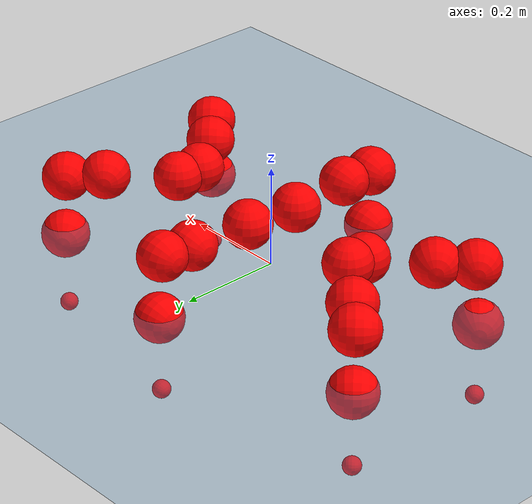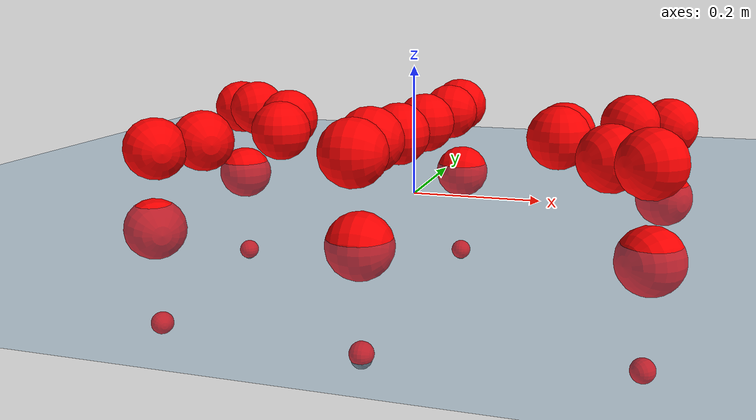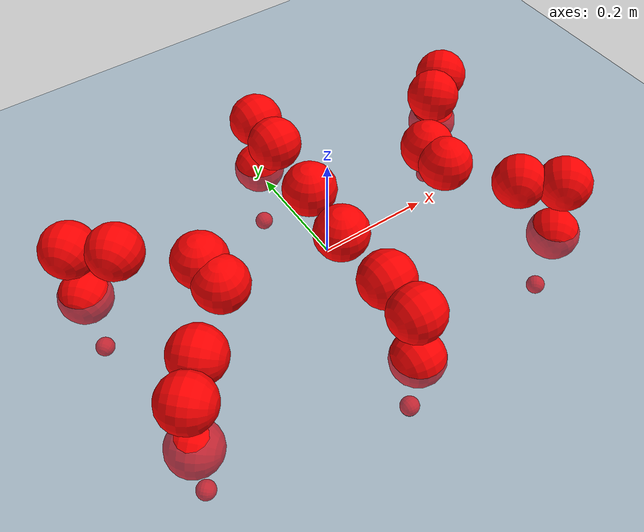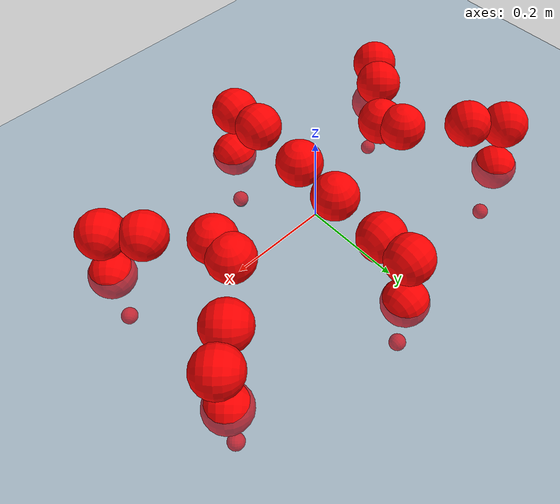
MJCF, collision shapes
<mujoco model="Golem">
  <compiler angle="radian" assetdir="assets" balanceinertia="true" inertiafromgeom="false"/>

  <option timestep="0.005" density="1.2" viscosity="2e-05"/>

  <size nkey="1"/>

  <visual>
    <quality shadowsize="8192"/>
    <map shadowclip="0.5"/>
  </visual>

  <default>
    <default class="/">
      <joint armature="0.01" damping="0.01" frictionloss="0.01"/>
      <geom contype="0" conaffinity="0" group="1" solref="-1000 -80"/>
      <site size="0.01 0.005 0.005" group="5"/>
      <general forcelimited="true" biastype="affine" gainprm="25" biasprm="0 -25 -0.5"/>
      <default class="visual">
        <geom type="mesh" group="2"/>
      </default>
      <default class="collision">
        <geom group="3"/>
      </default>
      <default class="foot">
        <geom size="0.01 0 0" condim="6" group="4" priority="1" solimp="0.015 1 0.01"/>
      </default>
      <default class="reward_collision_sphere">
        <geom group="5" rgba="1 0 0 1"/>
      </default>
    </default>
  </default>

  <asset>
    <texture type="skybox" colorspace="auto" name="//unnamed_texture_0" builtin="gradient" rgb1="0.95 0.95 0.95" rgb2="0.95 0.95 0.95" width="100" height="600"/>
    <texture type="2d" colorspace="auto" name="texplane" builtin="checker" rgb1="0.345 0.575 0.748" rgb2="0.345 0.575 0.748" markrgb="1 1 1" width="512" height="512"/>
    <material name="MatPlane" class="/" texture="texplane" texuniform="true" texrepeat="2 2" specular="0.9"/>
    <mesh name="body" class="/" file="body.stl" scale="0.001 0.001 0.001"/>
    <mesh name="coxa" class="/" file="coxa.stl" scale="0.001 0.001 0.001"/>
    <mesh name="femur" class="/" file="femur.stl" scale="0.001 0.001 0.001"/>
    <mesh name="tibia" class="/" file="tibia.stl" scale="0.001 0.001 0.001"/>
    <mesh name="tarsus" class="/" file="tarsus.stl" scale="0.001 0.001 0.001"/>
  </asset>

  <worldbody>
    <geom name="floor" class="/" size="100 100 0.125" type="plane" group="0" material="MatPlane"/>
    <light name="toplight_shadow" class="/" pos="0 0 5" dir="0.0990148 0.0990148 -0.990148" type="directional" ambient="0.04 0.04 0.04" diffuse="0.55 0.55 0.55" specular="0.12 0.12 0.12"/>
    <light name="toplight_fill" class="/" pos="0 0 5" dir="0.0990148 0.0990148 -0.990148" type="directional" castshadow="false" ambient="0.04 0.04 0.04" diffuse="0.3 0.3 0.3" specular="0.08 0.08 0.08"/>
    <body name="trunk" pos="0.000576292 0.000579462 0.00882951" quat="0.999999 0.000784248 0.00136707 4.28512e-05">
      <inertial pos="0.00120291 -0.00677074 0.00693699" quat="0.999922 -0.00836557 -0.00674584 0.0063447" mass="5.55272" diaginertia="0.0542571 0.00148484 0.0508118"/>
      <joint name="//unnamed_joint_0" type="free"/>
      <geom name="//unnamed_geom_1" class="/" pos="0 0 0.0906178" quat="1 0 0 0" type="mesh" rgba="0.9 0.9 0.9 1" mesh="body"/>
      <site name="imu" class="/" pos="0.200367 -0.00255077 0.104185" size="0.0117893"/>
      <camera name="track" class="/" pos="0 -1.38077 0" quat="0.707107 0.707107 0 0" mode="trackcom"/>
      <camera name="ego_camera" class="/" pos="0.185963 0 0.14159" quat="-0.5 -0.5 0.5 0.5"/>
      <body name="coxa_RR" pos="-0.246069 -0.0593291 0.0857107" quat="0.387335 -0.000857023 0.00130275 -0.921938">
        <inertial pos="0.00999657 0.00471893 0.00157976" quat="0.999269 -0.0139528 0.0128645 -0.0331755" mass="0.310006" diaginertia="0.0598689 0.0015601 0.0625766"/>
        <joint name="coxa_joint_RR" class="/" pos="0 0 0" axis="0.00466436 0.00190741 -0.999987" stiffness="0.00834159" range="-3.07624 3.1502" armature="0.0123901" damping="0" frictionloss="0.00725619"/>
        <geom name="//unnamed_geom_2" class="/" type="mesh" rgba="0.2 0.2 0.2 1" mesh="coxa"/>
        <geom name="//unnamed_geom_3" class="reward_collision_sphere" size="0.047157" pos="-0.0429146 0 0"/>
        <body name="femur_RR" pos="0.0829385 -0.00162485 -0.0059845" quat="0.49967 -0.500192 0.499999 0.500138">
          <inertial pos="-0.00207397 0.00227166 -0.00870379" quat="0.999997 -0.000528704 0.0022202 -0.000217502" mass="0.336439" diaginertia="0.0620606 0.00161577 0.0651239"/>
          <joint name="femur_joint_RR" class="/" pos="0 0 0" axis="0.0101969 0.0371763 -0.999257" stiffness="0.00183809" range="-3.15798 3.11241" armature="0.013621" damping="0.0305584" frictionloss="0.0124982"/>
          <geom name="//unnamed_geom_4" class="/" type="mesh" rgba="0.9 0.9 0.9 1" mesh="femur"/>
          <geom name="//unnamed_geom_5" class="reward_collision_sphere" size="0.047157"/>
          <body name="tibia_RR" pos="0.00499699 -0.0739667 0.0048314" quat="-1.34367e-05 1 0.000173617 2.47024e-05">
            <inertial pos="0.00288484 -0.00782721 0.00878564" quat="0.999229 -0.0209113 -0.0289313 -0.0163433" mass="0.334658" diaginertia="0.068248 0.00167442 0.0596762"/>
            <joint name="tibia_joint_RR" class="/" pos="0 0 0" axis="0.00519903 -0.00231084 0.999984" stiffness="0.00751777" range="-3.14508 3.25631" armature="0.0107753" damping="0" frictionloss="0.0124885"/>
            <geom name="//unnamed_geom_6" class="/" type="mesh" rgba="0.2 0.2 0.2 1" mesh="tibia"/>
            <geom name="//unnamed_geom_7" class="reward_collision_sphere" size="0.047157"/>
            <body name="tarsus_RR" pos="0.12375 0.00825893 0.00147004" quat="0.999991 0.0026176 0.00191659 0.0025867">
              <inertial pos="0.0842329 0.00972575 -0.00215211" quat="0.499442 0.500736 0.499475 0.500345" mass="0.343846" diaginertia="0.0592216 0.00135403 0.0550756"/>
              <joint name="tarsus_joint_RR" class="/" pos="0 0 0" axis="0.00591545 0.0106604 0.999926" stiffness="0.00905291" range="-3.14188 3.10533" armature="0.0127446" damping="0.0337269" frictionloss="0.0113292"/>
              <geom name="//unnamed_geom_8" class="/" type="mesh" rgba="0.9 0.9 0.9 1" mesh="tarsus"/>
              <geom name="foot_1" class="foot" size="0.0114944" pos="0.160215 0 0" quat="0 -0.707107 0 0.707107"/>
              <geom name="//unnamed_geom_10" class="reward_collision_sphere" size="0.047157"/>
              <geom name="//unnamed_geom_11" class="reward_collision_sphere" size="0.0176839" pos="0.153777 0 0"/>
              <site name="foot_1" class="foot" pos="0.160215 0 0" quat="0 -0.707107 0 0.707107" size="0.0117893"/>
            </body>
          </body>
        </body>
      </body>
      <body name="coxa_RM" pos="-0.00977109 -0.0967297 0.0947289" quat="0.705752 -7.18635e-05 -0.000939312 -0.708459">
        <inertial pos="0.000999406 0.00462008 0.0107034" quat="0.999988 -0.00237717 0.000933916 -0.00411048" mass="0.346645" diaginertia="0.0695978 0.00185635 0.0596377"/>
        <joint name="coxa_joint_RM" class="/" pos="0 0 0" axis="0.00176731 -0.000592509 -0.999998" range="-3.14457 3.12181" armature="0.0137688" damping="0.00350499" frictionloss="0.00895774"/>
        <geom name="//unnamed_geom_12" class="/" type="mesh" rgba="0.2 0.2 0.2 1" mesh="coxa"/>
        <geom name="//unnamed_geom_13" class="reward_collision_sphere" size="0.047157" pos="-0.0429146 0 0"/>
        <body name="femur_RM" pos="0.0791199 -0.00148314 0.011062" quat="0.497622 -0.502334 0.497234 0.502783">
          <inertial pos="-2.01933e-06 0.00468285 0.00191865" quat="0.998932 -0.0453295 0.00411305 0.00796292" mass="0.32529" diaginertia="0.0540613 0.00163219 0.0557748"/>
          <joint name="femur_joint_RM" class="/" pos="0 0 0" axis="0.000479808 -0.00717732 -0.999974" stiffness="0.00469755" range="-2.99431 2.99249" armature="0.00571936" damping="0" frictionloss="0.0106601"/>
          <geom name="//unnamed_geom_14" class="/" type="mesh" rgba="0.9 0.9 0.9 1" mesh="femur"/>
          <geom name="//unnamed_geom_15" class="reward_collision_sphere" size="0.047157"/>
          <body name="tibia_RM" pos="0.004453 -0.0713009 0.000554848" quat="-0.000230345 1 -0.000312022 -0.000408883">
            <inertial pos="0.00155431 0.00243023 0.00841163" quat="0.999384 -0.00170061 -0.018647 0.0296822" mass="0.395362" diaginertia="0.0637617 0.00170382 0.0556276"/>
            <joint name="tibia_joint_RM" class="/" pos="0 0 0" axis="0.00186521 -0.0010081 0.999998" range="-2.99971 3.28664" armature="0.0162415" damping="0.0236272" frictionloss="0.0127125"/>
            <geom name="//unnamed_geom_16" class="/" type="mesh" rgba="0.2 0.2 0.2 1" mesh="tibia"/>
            <geom name="//unnamed_geom_17" class="reward_collision_sphere" size="0.047157"/>
            <body name="tarsus_RM" pos="0.123471 0.00700974 -0.0097384" quat="0.999999 -0.000743929 -0.00078331 0.000615858">
              <inertial pos="0.0885168 0.0015616 0.00280156" quat="0.497975 0.517948 0.476404 0.506744" mass="0.32802" diaginertia="0.0595739 0.00157296 0.0567043"/>
              <joint name="tarsus_joint_RM" class="/" pos="0 0 0" axis="-1.00568e-05 -2.83473e-05 1" stiffness="0.0252191" range="-3.10513 2.91922" armature="0.0117749" damping="0.0508351" frictionloss="0.0115392"/>
              <geom name="//unnamed_geom_18" class="/" type="mesh" rgba="0.9 0.9 0.9 1" mesh="tarsus"/>
              <geom name="foot_2" class="foot" size="0.0153084" pos="0.160215 0 0" quat="0 -0.707107 0 0.707107"/>
              <geom name="//unnamed_geom_20" class="reward_collision_sphere" size="0.047157"/>
              <geom name="//unnamed_geom_21" class="reward_collision_sphere" size="0.0176839" pos="0.153777 0 0"/>
              <site name="foot_2" class="foot" pos="0.160215 0 0" quat="0 -0.707107 0 0.707107" size="0.0117893"/>
            </body>
          </body>
        </body>
      </body>
      <body name="coxa_RF" pos="0.257626 -0.0558617 0.0958562" quat="0.922386 -3.81086e-05 -0.00140438 -0.386268">
        <inertial pos="-0.00853012 0.00822082 -0.000386999" quat="1 -0.000281967 3.47046e-05 -0.000145504" mass="0.327799" diaginertia="0.0547646 0.00155455 0.0589061"/>
        <joint name="coxa_joint_RF" class="/" pos="0 0 0" axis="-0.0375427 -0.00993402 -0.999246" range="-3.14988 3.11831" armature="0.0108662" damping="0.0296249" frictionloss="0.0130877"/>
        <geom name="//unnamed_geom_22" class="/" type="mesh" rgba="0.2 0.2 0.2 1" mesh="coxa"/>
        <geom name="//unnamed_geom_23" class="reward_collision_sphere" size="0.047157" pos="-0.0429146 0 0"/>
        <body name="femur_RF" pos="0.0853669 -0.0110351 -0.00738864" quat="0.495925 -0.502093 0.49899 0.502961">
          <inertial pos="0.000876466 -0.00177531 0.00278392" quat="0.99978 0.0105348 0.0176957 -0.00406444" mass="0.33839" diaginertia="0.0625218 0.00165124 0.0577017"/>
          <joint name="femur_joint_RF" class="/" pos="0 0 0" axis="-0.00565259 0.000530175 -0.999984" stiffness="0.0281803" range="-3.20753 3.0586" armature="0.0107627" damping="0" frictionloss="0.0106651"/>
          <geom name="//unnamed_geom_24" class="/" type="mesh" rgba="0.9 0.9 0.9 1" mesh="femur"/>
          <geom name="//unnamed_geom_25" class="reward_collision_sphere" size="0.047157"/>
          <body name="tibia_RF" pos="-0.00614019 -0.0736096 0.00257812" quat="-0.000131685 1 8.50911e-05 -6.32481e-05">
            <inertial pos="-0.00246744 0.00671707 0.00126732" quat="0.999922 0.011129 0.00555416 -0.000723445" mass="0.358176" diaginertia="0.0670476 0.00173288 0.0574236"/>
            <joint name="tibia_joint_RF" class="/" pos="0 0 0" axis="0.00545907 0.00837602 0.99995" stiffness="0.0347082" range="-3.10655 3.28312" armature="0.0113165" damping="0.0663083" frictionloss="0.011709"/>
            <geom name="//unnamed_geom_26" class="/" type="mesh" rgba="0.2 0.2 0.2 1" mesh="tibia"/>
            <geom name="//unnamed_geom_27" class="reward_collision_sphere" size="0.047157"/>
            <body name="tarsus_RF" pos="0.126796 0.00832045 -0.00109405" quat="0.999996 -0.00102337 0.00242523 0.000967413">
              <inertial pos="0.0853441 0.00169485 -0.000613963" quat="0.501039 0.498684 0.498424 0.501844" mass="0.333458" diaginertia="0.0593946 0.00143692 0.0595952"/>
              <joint name="tarsus_joint_RF" class="/" pos="0 0 0" axis="-0.00319175 -0.00256221 0.999992" range="-3.18002 3.13426" armature="0.0119894" damping="0.00548242" frictionloss="0.0111689"/>
              <geom name="//unnamed_geom_28" class="/" type="mesh" rgba="0.9 0.9 0.9 1" mesh="tarsus"/>
              <geom name="foot_3" class="foot" size="0.0110046" pos="0.160215 0 0" quat="0 -0.707107 0 0.707107"/>
              <geom name="//unnamed_geom_30" class="reward_collision_sphere" size="0.047157"/>
              <geom name="//unnamed_geom_31" class="reward_collision_sphere" size="0.0176839" pos="0.153777 0 0"/>
              <site name="foot_3" class="foot" pos="0.160215 0 0" quat="0 -0.707107 0 0.707107" size="0.0117893"/>
            </body>
          </body>
        </body>
      </body>
      <body name="coxa_LR" pos="-0.254278 0.0508361 0.0977938" quat="0.3827 -6.76688e-05 -1.02135e-06 0.923873">
        <inertial pos="-0.00118656 0.0018156 0.00626073" quat="0.999591 0.0222723 0.0159196 -0.00825216" mass="0.379025" diaginertia="0.0673361 0.00161442 0.0630846"/>
        <joint name="coxa_joint_LR" class="/" pos="0 0 0" axis="0.000441535 0.0351142 -0.999383" range="-3.16597 3.12137" armature="0.0105018" damping="0.0118722" frictionloss="0.00798249"/>
        <geom name="//unnamed_geom_32" class="/" type="mesh" rgba="0.2 0.2 0.2 1" mesh="coxa"/>
        <geom name="//unnamed_geom_33" class="reward_collision_sphere" size="0.047157" pos="-0.0429146 0 0"/>
        <body name="femur_LR" pos="0.09163 0.0097955 0.00141644" quat="0.500553 -0.498251 0.499241 0.501947">
          <inertial pos="-0.00192472 0.00293132 0.0100132" quat="0.999839 -0.0178722 0.000416124 -0.00169952" mass="0.345128" diaginertia="0.0664219 0.00172159 0.0614811"/>
          <joint name="femur_joint_LR" class="/" pos="0 0 0" axis="-0.0356753 -0.036176 0.998708" stiffness="0.00119304" range="-3.1204 3.14869" armature="0.00900238" damping="0" frictionloss="0.01112"/>
          <geom name="//unnamed_geom_34" class="/" type="mesh" rgba="0.9 0.9 0.9 1" mesh="femur"/>
          <geom name="//unnamed_geom_35" class="reward_collision_sphere" size="0.047157"/>
          <body name="tibia_LR" pos="0.00652514 -0.0756935 0.00536296" quat="-0.000263181 1 0.000657355 -4.60731e-05">
            <inertial pos="-0.00119918 -0.0078712 -0.00202341" quat="1 -5.31217e-05 -6.17851e-05 -0.000272176" mass="0.30854" diaginertia="0.0628326 0.00145567 0.0488401"/>
            <joint name="tibia_joint_LR" class="/" pos="0 0 0" axis="-0.0277694 -0.0474736 -0.998486" range="-3.27943 3.36076" armature="0.00560773" damping="0.0458832" frictionloss="0.0086245"/>
            <geom name="//unnamed_geom_36" class="/" type="mesh" rgba="0.2 0.2 0.2 1" mesh="tibia"/>
            <geom name="//unnamed_geom_37" class="reward_collision_sphere" size="0.047157"/>
            <body name="tarsus_LR" pos="0.125374 0.00253093 0.00178925" quat="1 1.65453e-05 0.000173374 -0.000132774">
              <inertial pos="0.075822 -0.000817263 0.0111128" quat="0.501385 0.500944 0.499275 0.49839" mass="0.326898" diaginertia="0.0545051 0.00152413 0.0561616"/>
              <joint name="tarsus_joint_LR" class="/" pos="0 0 0" axis="-0.00958241 -0.0114566 -0.999888" range="-3.23172 3.22131" armature="0.0155749" damping="0" frictionloss="0.0114385"/>
              <geom name="//unnamed_geom_38" class="/" type="mesh" rgba="0.9 0.9 0.9 1" mesh="tarsus"/>
              <geom name="foot_4" class="foot" size="0.0122678" pos="0.160215 0 0" quat="0.707107 0 -0.707107 0"/>
              <geom name="//unnamed_geom_40" class="reward_collision_sphere" size="0.047157"/>
              <geom name="//unnamed_geom_41" class="reward_collision_sphere" size="0.0176839" pos="0.153777 0 0"/>
              <site name="foot_4" class="foot" pos="0.160215 0 0" quat="0.707107 0 -0.707107 0" size="0.0117893"/>
            </body>
          </body>
        </body>
      </body>
      <body name="coxa_LM" pos="0.00125538 0.0976743 0.0957798" quat="0.707013 -3.90657e-05 4.28027e-06 0.7072">
        <inertial pos="-3.51626e-05 0.00851836 -0.0103794" quat="0.999871 0.00652675 -0.0145892 0.0018243" mass="0.309162" diaginertia="0.0611733 0.00156191 0.0582442"/>
        <joint name="coxa_joint_LM" class="/" pos="0 0 0" axis="0.0330735 0.0124856 -0.999375" range="-3.17231 3.17211" armature="0.0178441" damping="0" frictionloss="0.0114537"/>
        <geom name="//unnamed_geom_42" class="/" type="mesh" rgba="0.2 0.2 0.2 1" mesh="coxa"/>
        <geom name="//unnamed_geom_43" class="reward_collision_sphere" size="0.047157" pos="-0.0429146 0 0"/>
        <body name="femur_LM" pos="0.0829106 -0.00933276 0.000751936" quat="0.499627 -0.500355 0.500322 0.499695">
          <inertial pos="0.00981983 -0.00455612 0.00487529" quat="0.999957 -0.00421167 0.00598207 0.005673" mass="0.35248" diaginertia="0.0675435 0.00165542 0.0630041"/>
          <joint name="femur_joint_LM" class="/" pos="0 0 0" axis="-0.03782 -0.023592 0.999006" range="-3.12714 3.138" armature="0.0114599" damping="0.0230207" frictionloss="0.00786616"/>
          <geom name="//unnamed_geom_44" class="/" type="mesh" rgba="0.9 0.9 0.9 1" mesh="femur"/>
          <geom name="//unnamed_geom_45" class="reward_collision_sphere" size="0.047157"/>
          <body name="tibia_LM" pos="-0.00361272 -0.067199 -0.00257414" quat="0.000135657 1 0.000333353 0.000255144">
            <inertial pos="0.000198153 0.00162475 -0.00595451" quat="0.999443 -0.00814665 -0.0185498 -0.0265203" mass="0.362029" diaginertia="0.0589582 0.00157406 0.0613429"/>
            <joint name="tibia_joint_LM" class="/" pos="0 0 0" axis="-0.000440493 -0.000809003 -1" range="-3.11108 2.97781" armature="0.0125143" damping="0.0248748" frictionloss="0.0101767"/>
            <geom name="//unnamed_geom_46" class="/" type="mesh" rgba="0.2 0.2 0.2 1" mesh="tibia"/>
            <geom name="//unnamed_geom_47" class="reward_collision_sphere" size="0.047157"/>
            <body name="tarsus_LM" pos="0.126489 0.00843012 0.00318015" quat="1 -0.000146355 1.62888e-05 1.97865e-05">
              <inertial pos="0.076571 0.00184276 0.00151178" quat="0.501015 0.499416 0.500588 0.498978" mass="0.328493" diaginertia="0.0581252 0.00152827 0.0514732"/>
              <joint name="tarsus_joint_LM" class="/" pos="0 0 0" axis="-0.00594799 0.0112826 -0.999919" stiffness="0.0309727" range="-3.17715 3.10193" armature="0.0127309" damping="0.0452858" frictionloss="0.0121583"/>
              <geom name="//unnamed_geom_48" class="/" type="mesh" rgba="0.9 0.9 0.9 1" mesh="tarsus"/>
              <geom name="foot_5" class="foot" size="0.0123963" pos="0.160215 0 0" quat="0.707107 0 -0.707107 0"/>
              <geom name="//unnamed_geom_50" class="reward_collision_sphere" size="0.047157"/>
              <geom name="//unnamed_geom_51" class="reward_collision_sphere" size="0.0176839" pos="0.153777 0 0"/>
              <site name="foot_5" class="foot" pos="0.160215 0 0" quat="0.707107 0 -0.707107 0" size="0.0117893"/>
            </body>
          </body>
        </body>
      </body>
      <body name="coxa_LF" pos="0.26015 0.0568676 0.0941498" quat="0.923677 0.000369168 -7.30174e-05 0.383171">
        <inertial pos="-0.00631468 -0.00222669 -0.00128495" quat="0.999001 0.000230956 -0.0425257 -0.0137605" mass="0.337637" diaginertia="0.0520982 0.0015729 0.0569105"/>
        <joint name="coxa_joint_LF" class="/" pos="0 0 0" axis="0.00010594 -0.00189163 -0.999998" range="-3.1174 3.30012" armature="0.0137948" damping="0.0158193" frictionloss="0.0107672"/>
        <geom name="//unnamed_geom_52" class="/" type="mesh" rgba="0.2 0.2 0.2 1" mesh="coxa"/>
        <geom name="//unnamed_geom_53" class="reward_collision_sphere" size="0.047157" pos="-0.0429146 0 0"/>
        <body name="femur_LF" pos="0.0936369 0.0047727 0.00274199" quat="0.500325 -0.499682 0.500533 0.499459">
          <inertial pos="0.00714382 -0.00593348 -0.00218417" quat="0.999933 -0.00492286 -0.0104983 0.000403944" mass="0.33405" diaginertia="0.0655918 0.00161071 0.0571781"/>
          <joint name="femur_joint_LF" class="/" pos="0 0 0" axis="-0.0319313 0.0301509 0.999035" stiffness="0.0237297" range="-2.97342 3.17374" armature="0.0116007" damping="0.0334963" frictionloss="0.0118806"/>
          <geom name="//unnamed_geom_54" class="/" type="mesh" rgba="0.9 0.9 0.9 1" mesh="femur"/>
          <geom name="//unnamed_geom_55" class="reward_collision_sphere" size="0.047157"/>
          <body name="tibia_LF" pos="0.00934556 -0.0761594 -0.00825144" quat="-0.0024562 0.999996 0.000131868 -0.00148918">
            <inertial pos="0.00689063 0.000701393 -0.000828991" quat="0.998508 -0.0230131 0.0464356 -0.0171822" mass="0.286844" diaginertia="0.0634161 0.00158459 0.0575775"/>
            <joint name="tibia_joint_LF" class="/" pos="0 0 0" axis="-4.0994e-05 -0.00127671 -0.999999" stiffness="0.01787" range="-3.15088 3.08246" armature="0.0131233" damping="0.0400799" frictionloss="0.0113767"/>
            <geom name="//unnamed_geom_56" class="/" type="mesh" rgba="0.2 0.2 0.2 1" mesh="tibia"/>
            <geom name="//unnamed_geom_57" class="reward_collision_sphere" size="0.047157"/>
            <body name="tarsus_LF" pos="0.122193 0.00677189 -0.00591939" quat="1 0.000127619 0.000130345 -0.000312615">
              <inertial pos="0.0900083 -0.000165064 0.00428261" quat="0.499372 0.500914 0.500011 0.499702" mass="0.402728" diaginertia="0.0655795 0.00176487 0.062231"/>
              <joint name="tarsus_joint_LF" class="/" pos="0 0 0" axis="0.00765819 0.00443115 -0.999961" stiffness="0.021119" range="-3.12924 3.0675" armature="0.0138096" damping="0" frictionloss="0.0129097"/>
              <geom name="//unnamed_geom_58" class="/" type="mesh" rgba="0.9 0.9 0.9 1" mesh="tarsus"/>
              <geom name="foot_6" class="foot" size="0.00937542" pos="0.160215 0 0" quat="0.707107 0 -0.707107 0"/>
              <geom name="//unnamed_geom_60" class="reward_collision_sphere" size="0.047157"/>
              <geom name="//unnamed_geom_61" class="reward_collision_sphere" size="0.0176839" pos="0.153777 0 0"/>
              <site name="foot_6" class="foot" pos="0.160215 0 0" quat="0.707107 0 -0.707107 0" size="0.0117893"/>
            </body>
          </body>
        </body>
      </body>
    </body>
  </worldbody>

  <contact>
    <pair class="/" geom1="floor" geom2="foot_1" name="//unnamed_contact_0"/>
    <pair class="/" geom1="floor" geom2="foot_2" name="//unnamed_contact_1"/>
    <pair class="/" geom1="floor" geom2="foot_3" name="//unnamed_contact_2"/>
    <pair class="/" geom1="floor" geom2="foot_4" name="//unnamed_contact_3"/>
    <pair class="/" geom1="floor" geom2="foot_5" name="//unnamed_contact_4"/>
    <pair class="/" geom1="floor" geom2="foot_6" name="//unnamed_contact_5"/>
  </contact>

  <actuator>
    <general name="coxa_joint_RR" class="/" joint="coxa_joint_RR" forcerange="-8.02842 8.02842" gainprm="28.4128" biasprm="0 -28.4128 -0.517466"/>
    <general name="femur_joint_RR" class="/" joint="femur_joint_RR" forcerange="-7.05304 7.05304" gainprm="28.4128" biasprm="0 -28.4128 -0.517466"/>
    <general name="tibia_joint_RR" class="/" joint="tibia_joint_RR" forcerange="-11.1055 11.1055" gainprm="28.4128" biasprm="0 -28.4128 -0.517466"/>
    <general name="tarsus_joint_RR" class="/" joint="tarsus_joint_RR" forcerange="-7.90914 7.90914" gainprm="28.4128" biasprm="0 -28.4128 -0.517466"/>
    <general name="coxa_joint_RM" class="/" joint="coxa_joint_RM" forcerange="-5.04274 5.04274" gainprm="28.4128" biasprm="0 -28.4128 -0.517466"/>
    <general name="femur_joint_RM" class="/" joint="femur_joint_RM" forcerange="-8.00354 8.00354" gainprm="28.4128" biasprm="0 -28.4128 -0.517466"/>
    <general name="tibia_joint_RM" class="/" joint="tibia_joint_RM" forcerange="-7.83833 7.83833" gainprm="28.4128" biasprm="0 -28.4128 -0.517466"/>
    <general name="tarsus_joint_RM" class="/" joint="tarsus_joint_RM" forcerange="-11.1274 11.1274" gainprm="28.4128" biasprm="0 -28.4128 -0.517466"/>
    <general name="coxa_joint_RF" class="/" joint="coxa_joint_RF" forcerange="-6.32899 6.32899" gainprm="28.4128" biasprm="0 -28.4128 -0.517466"/>
    <general name="femur_joint_RF" class="/" joint="femur_joint_RF" forcerange="-8.44524 8.44524" gainprm="28.4128" biasprm="0 -28.4128 -0.517466"/>
    <general name="tibia_joint_RF" class="/" joint="tibia_joint_RF" forcerange="-8.03725 8.03725" gainprm="28.4128" biasprm="0 -28.4128 -0.517466"/>
    <general name="tarsus_joint_RF" class="/" joint="tarsus_joint_RF" forcerange="-8.736 8.736" gainprm="28.4128" biasprm="0 -28.4128 -0.517466"/>
    <general name="coxa_joint_LR" class="/" joint="coxa_joint_LR" forcerange="-5.76786 5.76786" gainprm="28.4128" biasprm="0 -28.4128 -0.517466"/>
    <general name="femur_joint_LR" class="/" joint="femur_joint_LR" forcerange="-8.62237 8.62237" gainprm="28.4128" biasprm="0 -28.4128 -0.517466"/>
    <general name="tibia_joint_LR" class="/" joint="tibia_joint_LR" forcerange="-6.64388 6.64388" gainprm="28.4128" biasprm="0 -28.4128 -0.517466"/>
    <general name="tarsus_joint_LR" class="/" joint="tarsus_joint_LR" forcerange="-5.55761 5.55761" gainprm="28.4128" biasprm="0 -28.4128 -0.517466"/>
    <general name="coxa_joint_LM" class="/" joint="coxa_joint_LM" forcerange="-11.0274 11.0274" gainprm="28.4128" biasprm="0 -28.4128 -0.517466"/>
    <general name="femur_joint_LM" class="/" joint="femur_joint_LM" forcerange="-8.22963 8.22963" gainprm="28.4128" biasprm="0 -28.4128 -0.517466"/>
    <general name="tibia_joint_LM" class="/" joint="tibia_joint_LM" forcerange="-5.89663 5.89663" gainprm="28.4128" biasprm="0 -28.4128 -0.517466"/>
    <general name="tarsus_joint_LM" class="/" joint="tarsus_joint_LM" forcerange="-5.1572 5.1572" gainprm="28.4128" biasprm="0 -28.4128 -0.517466"/>
    <general name="coxa_joint_LF" class="/" joint="coxa_joint_LF" forcerange="-10.4951 10.4951" gainprm="28.4128" biasprm="0 -28.4128 -0.517466"/>
    <general name="femur_joint_LF" class="/" joint="femur_joint_LF" forcerange="-10.4053 10.4053" gainprm="28.4128" biasprm="0 -28.4128 -0.517466"/>
    <general name="tibia_joint_LF" class="/" joint="tibia_joint_LF" forcerange="-9.03728 9.03728" gainprm="28.4128" biasprm="0 -28.4128 -0.517466"/>
    <general name="tarsus_joint_LF" class="/" joint="tarsus_joint_LF" forcerange="-9.60388 9.60388" gainprm="28.4128" biasprm="0 -28.4128 -0.517466"/>
  </actuator>

  <sensor>
    <gyro site="imu" name="imu_angular_velocity"/>
    <velocimeter site="imu" name="imu_linear_velocity"/>
    <framelinvel objtype="site" objname="foot_1" name="foot_1_global_linear_velocity"/>
    <framelinvel objtype="site" objname="foot_2" name="foot_2_global_linear_velocity"/>
    <framelinvel objtype="site" objname="foot_3" name="foot_3_global_linear_velocity"/>
    <framelinvel objtype="site" objname="foot_4" name="foot_4_global_linear_velocity"/>
    <framelinvel objtype="site" objname="foot_5" name="foot_5_global_linear_velocity"/>
    <framelinvel objtype="site" objname="foot_6" name="foot_6_global_linear_velocity"/>
  </sensor>

  <keyframe>
    <key name="home" qpos="0 0 0.1457 1 0 0 0 0 0 0 0 0 0 0 0 0 0 0 0 0 0 0 0 0 0 0 0 0 0 0 0"/>
  </keyframe>
</mujoco>
